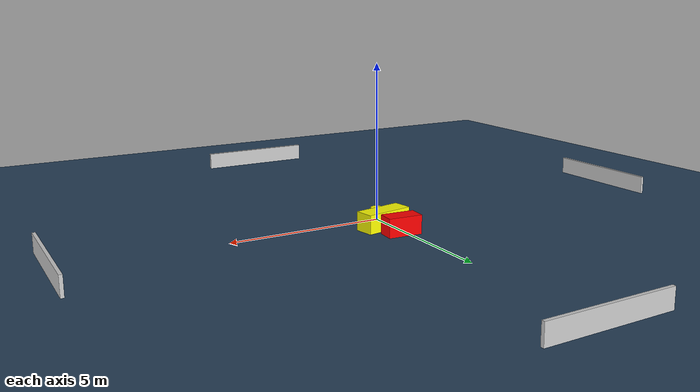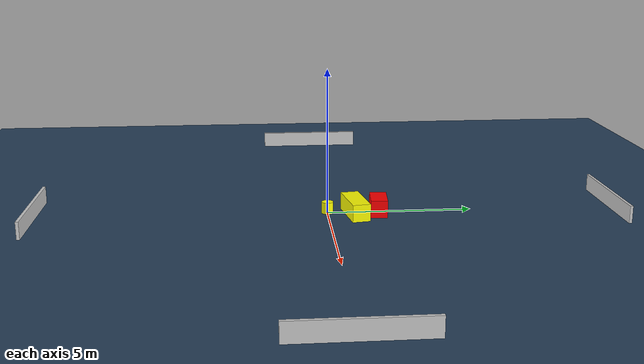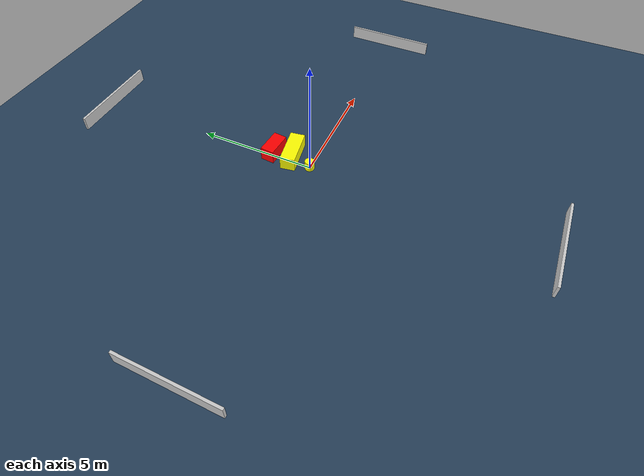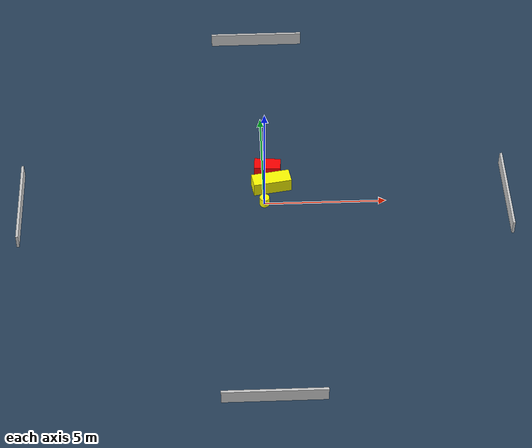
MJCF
<?xml version="1.0" ?>
<mujoco model="generated_environment">
  <option timestep="0.01" integrator="RK4" cone="elliptic"/>
  <default>
    <geom density="1"/>
  </default>
  <asset>
    <texture builtin="gradient" height="3072" name="skybox" rgb1="0.3 0.5 0.7" rgb2="0 0 0" type="skybox" width="512"/>
    <texture builtin="checker" height="300" name="groundplane" rgb1="0.2 0.3 0.4" rgb2="0.1 0.2 0.3" type="2d" width="300"/>
    <material name="groundplane" reflectance="0.2" texrepeat="5 5" texture="groundplane"/>
  </asset>
  <worldbody>
    <light dir="0 0 -1" directional="true" pos="0 0 1.5"/>
    <geom condim="3" friction="0.5 0.005 0.001" material="groundplane" name="floor" pos="0 0 0" size="0 0 0.05" type="plane"/>
    <body name="walls">
      <geom name="wall_1" condim="4" pos="-10.0 0.0 0.3" rgba="0.800000011920929 0.800000011920929 0.800000011920929 1.0" size="0.05 2.0 0.3" type="box"/>
      <geom name="wall_2" condim="4" pos="10.0 0.0 0.3" rgba="0.800000011920929 0.800000011920929 0.800000011920929 1.0" size="0.05 2.0 0.3" type="box"/>
      <geom name="wall_3" condim="4" pos="0.0 -10.0 0.3" rgba="0.800000011920929 0.800000011920929 0.800000011920929 1.0" size="2.0 0.05 0.3" type="box"/>
      <geom name="wall_4" condim="4" pos="0.0 10.0 0.3" rgba="0.800000011920929 0.800000011920929 0.800000011920929 1.0" size="2.0 0.05 0.3" type="box"/>
    </body>
    <body name="robot">
      <joint name="joint_x" type="slide" pos="0 0 0" axis="1 0 0"/>
      <joint name="joint_y" type="slide" pos="0 0 0" axis="0 1 0"/>
      <geom name="robot" type="cylinder" pos="0.0 0.0 0.2" size="0.2 0.2 0.0" mass="5.0" friction="1.0 0.005 0.0001" condim="4" rgba="1.0 1.0 0.0 1.0"/>
    </body>
    <body name="obstacle_1_movable">
      <geom name="obstacle_1_movable" condim="4" pos="0.31874364730556437 0.9333776258987428 0.3" euler="0 0 189.40102016204486" friction="0.0 0.005 0.001" rgba="1.0 1.0 0.0 1.0" size="0.7907216498850391 0.31279670720197733 0.3" type="box" mass="0.1"/>
      <joint type="free"/>
    </body>
    <body name="obstacle_2_static">
      <geom name="obstacle_2_static" condim="4" pos="0.18251246137097452 1.7492945968576623 0.3" euler="0 0 175.50690456438824" friction="0.0 0.005 0.001" rgba="1.0 0.0 0.0 1.0" size="0.5457923517103555 0.2890717194042849 0.3" type="box"/>
    </body>
  </worldbody>
  <actuator>
    <motor name="actuator_x" joint="joint_x" gear="1" ctrlrange="-1 1"/>
    <motor name="actuator_y" joint="joint_y" gear="1" ctrlrange="-1 1"/>
  </actuator>
</mujoco>
